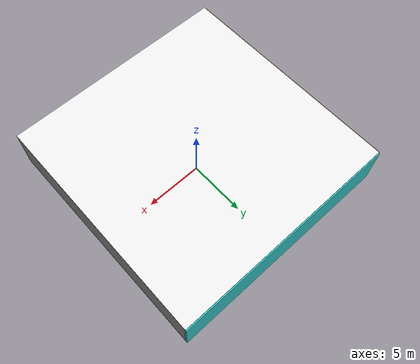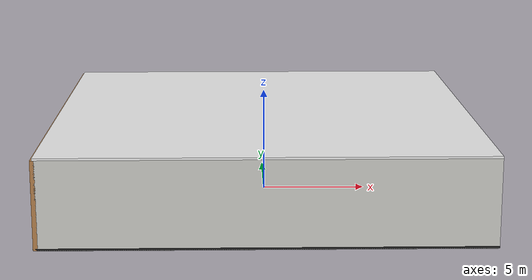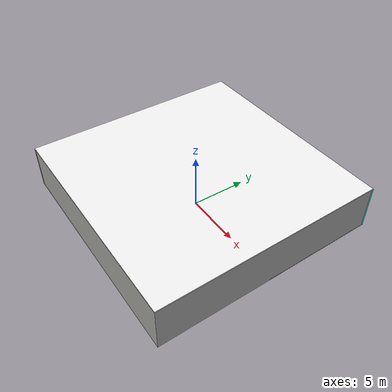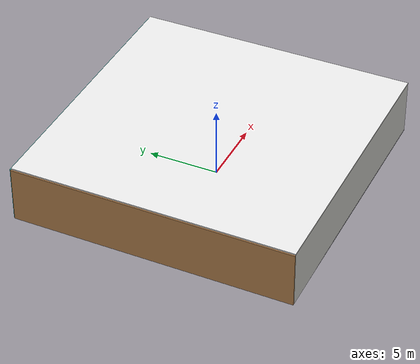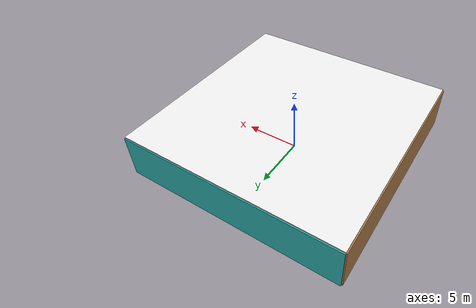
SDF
<sdf version="1.4">
 <world name="default">
  <physics type="ode">
   <max_step_size>0.001</max_step_size>
   <real_time_factor>1</real_time_factor>
   <real_time_update_rate>1000</real_time_update_rate>
   <gravity>0 0 -9.8</gravity>
  </physics>
  <scene><ambient>0.4 0.4 0.4 1</ambient><background>0.7 0.7 0.7 1</background><shadows>1</shadows></scene>
  <model name="Surrounding">
   <static>1</static>
   <link name="Ceiling">
    <collision name="Ceiling_Collision"><geometry><box><size>20 20 0.1</size></box></geometry></collision>
    <visual name="Ceiling_Visual">
     <geometry><box><size>20 20 0.1</size></box></geometry>
     <material>
      <script><uri>file://media/materials/scripts/gazebo.material</uri><name>Gazebo/WhiteGlow</name></script>
     </material>
    </visual>
    <pose>0 0 4.05 0 0 0</pose>
   </link>
   <link name="Wall_South">
    <collision name="Wall_South_Collision">
     <geometry><box><size>20 0 4</size></box></geometry>
     <pose>0 0 2 0 -0 0</pose>
    </collision>
    <visual name="Wall_South_Visual">
     <pose>0 0 2 0 -0 0</pose>
     <geometry><box><size>20 0 4</size></box></geometry>
     <material>
      <script><uri>file://media/materials/scripts/gazebo.material</uri><name>Gazebo/CeilingTiled</name></script>
     </material>
    </visual>
    <velocity_decay><linear>0</linear><angular>0</angular></velocity_decay>
    <pose>0 -10 0 0 -0 0</pose>
   </link>
   <link name="Wall_East">
    <collision name="Wall_21_Collision">
     <geometry><box><size>20 0 4</size></box></geometry>
     <pose>0 0 2 0 -0 0</pose>
    </collision>
    <visual name="Wall_21_Visual">
     <pose>0 0 2 0 -0 0</pose>
     <geometry><box><size>20 0 4</size></box></geometry>
     <material>
      <script><uri>file://media/materials/scripts/gazebo.material</uri><name>Gazebo/Grey</name></script>
     </material>
    </visual>
    <velocity_decay><linear>0</linear><angular>0</angular></velocity_decay>
    <pose>10 0 0 0 -0 1.5708</pose>
   </link>
   <link name="Wall_North">
    <collision name="Wall_22_Collision">
     <geometry><box><size>20 0.2 4</size></box></geometry>
     <pose>0 0 2 0 -0 0</pose>
    </collision>
    <visual name="Wall_22_Visual">
     <pose>0 0 2 0 -0 0</pose>
     <geometry><box><size>20 0.2 4</size></box></geometry>
     <material>
      <script><uri>file://media/materials/scripts/gazebo.material</uri><name>Gazebo/Turquoise</name></script>
     </material>
    </visual>
    <velocity_decay><linear>0</linear><angular>0</angular></velocity_decay>
    <pose>0 10 0 0 -0 0</pose>
   </link>
   <link name="Wall_West">
    <collision name="Wall_23_Collision">
     <geometry><box><size>20 0.2 4</size></box></geometry>
     <pose>0 0 2 0 -0 0</pose>
    </collision>
    <visual name="Wall_23_Visual">
     <pose>0 0 2 0 -0 0</pose>
     <geometry><box><size>20 0.2 4</size></box></geometry>
     <material>
      <script><uri>file://media/materials/scripts/gazebo.material</uri><name>Gazebo/WoodFloor</name></script>
     </material>
    </visual>
    <velocity_decay><linear>0</linear><angular>0</angular></velocity_decay>
    <pose>-10 0 0 0 0 -1.5708</pose>
   </link>
   <link name="Ground_link">
    <collision name="collision">
     <pose>0 0 .05 0 -0 0</pose>
     <geometry><box><size>20 20 0.1</size></box></geometry>
    </collision>
    <visual name="visual">
     <pose>0 0 .05 0 -0 0</pose>
     <geometry><box><size>20 20 0.1</size></box></geometry>
     <material>
      <script><uri>file://media/materials/scripts/gazebo.material</uri><name>Gazebo/Black</name></script>
     </material>
    </visual>
   </link>
   <static>1</static>
  </model>
  <spherical_coordinates>
   <surface_model>EARTH_WGS84</surface_model>
   <latitude_deg>0</latitude_deg>
   <longitude_deg>0</longitude_deg>
   <elevation>0</elevation>
   <heading_deg>0</heading_deg>
  </spherical_coordinates>
  <light name="lightball_0" type="diffuse">
   <diffuse>0.8 0.8 0.8 1</diffuse>
   <specular>0.2 0.2 0.2 1</specular>
   <attenuation>
    <range>100</range>
    <constant>0.7</constant>
    <linear>0.01</linear>
    <quadratic>0.001</quadratic>
   </attenuation>
   <direction>-0.5 0.1 -0.9</direction>
   <pose>-1.36994393562 6.25142688945 1.51985971268 0 0 0</pose>
  </light>
  <light name="lightball_1" type="diffuse">
   <diffuse>0.8 0.8 0.8 1</diffuse>
   <specular>0.2 0.2 0.2 1</specular>
   <attenuation>
    <range>100</range>
    <constant>0.7</constant>
    <linear>0.01</linear>
    <quadratic>0.001</quadratic>
   </attenuation>
   <direction>-0.5 0.1 -0.9</direction>
   <pose>2.19671066075 -3.18928045379 3.89428007903 0 0 0</pose>
  </light>
  <light name="lightball_2" type="diffuse">
   <diffuse>0.8 0.8 0.8 1</diffuse>
   <specular>0.2 0.2 0.2 1</specular>
   <attenuation>
    <range>100</range>
    <constant>0.7</constant>
    <linear>0.01</linear>
    <quadratic>0.001</quadratic>
   </attenuation>
   <direction>-0.5 0.1 -0.9</direction>
   <pose>6.23569495027 3.47227633683 1.33826484665 0 0 0</pose>
  </light>
  <light name="lightball_3" type="diffuse">
   <diffuse>0.8 0.8 0.8 1</diffuse>
   <specular>0.2 0.2 0.2 1</specular>
   <attenuation>
    <range>100</range>
    <constant>0.7</constant>
    <linear>0.01</linear>
    <quadratic>0.001</quadratic>
   </attenuation>
   <direction>-0.5 0.1 -0.9</direction>
   <pose>2.27692455706 4.36263022337 1.53740779562 0 0 0</pose>
  </light>
  <light name="lightball_4" type="diffuse">
   <diffuse>0.8 0.8 0.8 1</diffuse>
   <specular>0.2 0.2 0.2 1</specular>
   <attenuation>
    <range>100</range>
    <constant>0.7</constant>
    <linear>0.01</linear>
    <quadratic>0.001</quadratic>
   </attenuation>
   <direction>-0.5 0.1 -0.9</direction>
   <pose>-7.34663514499 -3.90904656187 1.18758919555 0 0 0</pose>
  </light>
  <light name="lightball_5" type="diffuse">
   <diffuse>0.8 0.8 0.8 1</diffuse>
   <specular>0.2 0.2 0.2 1</specular>
   <attenuation>
    <range>100</range>
    <constant>0.7</constant>
    <linear>0.01</linear>
    <quadratic>0.001</quadratic>
   </attenuation>
   <direction>-0.5 0.1 -0.9</direction>
   <pose>1.7006397263 -3.80612314873 1.41227655458 0 0 0</pose>
  </light>
  <light name="lightball_6" type="diffuse">
   <diffuse>0.8 0.8 0.8 1</diffuse>
   <specular>0.2 0.2 0.2 1</specular>
   <attenuation>
    <range>100</range>
    <constant>0.7</constant>
    <linear>0.01</linear>
    <quadratic>0.001</quadratic>
   </attenuation>
   <direction>-0.5 0.1 -0.9</direction>
   <pose>-4.03613720018 -5.5665852748 1.06018083259 0 0 0</pose>
  </light>
  <light name="lightball_7" type="diffuse">
   <diffuse>0.8 0.8 0.8 1</diffuse>
   <specular>0.2 0.2 0.2 1</specular>
   <attenuation>
    <range>100</range>
    <constant>0.7</constant>
    <linear>0.01</linear>
    <quadratic>0.001</quadratic>
   </attenuation>
   <direction>-0.5 0.1 -0.9</direction>
   <pose>-4.63396915725 -5.53272512297 2.02821534457 0 0 0</pose>
  </light>
  <light name="lightball_8" type="diffuse">
   <diffuse>0.8 0.8 0.8 1</diffuse>
   <specular>0.2 0.2 0.2 1</specular>
   <attenuation>
    <range>100</range>
    <constant>0.7</constant>
    <linear>0.01</linear>
    <quadratic>0.001</quadratic>
   </attenuation>
   <direction>-0.5 0.1 -0.9</direction>
   <pose>9.62642215368 -5.04933866267 3.17906284664 0 0 0</pose>
  </light>
  <light name="lightball_9" type="diffuse">
   <diffuse>0.8 0.8 0.8 1</diffuse>
   <specular>0.2 0.2 0.2 1</specular>
   <attenuation>
    <range>100</range>
    <constant>0.7</constant>
    <linear>0.01</linear>
    <quadratic>0.001</quadratic>
   </attenuation>
   <direction>-0.5 0.1 -0.9</direction>
   <pose>-6.80825483243 7.37884417667 1.8867773371 0 0 0</pose>
  </light>
  <light name="lightball_10" type="diffuse">
   <diffuse>0.8 0.8 0.8 1</diffuse>
   <specular>0.2 0.2 0.2 1</specular>
   <attenuation>
    <range>100</range>
    <constant>0.7</constant>
    <linear>0.01</linear>
    <quadratic>0.001</quadratic>
   </attenuation>
   <direction>-0.5 0.1 -0.9</direction>
   <pose>-0.979076310479 -3.94784946282 1.28480733705 0 0 0</pose>
  </light>
  <light name="lightball_11" type="diffuse">
   <diffuse>0.8 0.8 0.8 1</diffuse>
   <specular>0.2 0.2 0.2 1</specular>
   <attenuation>
    <range>100</range>
    <constant>0.7</constant>
    <linear>0.01</linear>
    <quadratic>0.001</quadratic>
   </attenuation>
   <direction>-0.5 0.1 -0.9</direction>
   <pose>1.29298837551 6.51513817155 2.72889928979 0 0 0</pose>
  </light>
  <light name="lightball_12" type="diffuse">
   <diffuse>0.8 0.8 0.8 1</diffuse>
   <specular>0.2 0.2 0.2 1</specular>
   <attenuation>
    <range>100</range>
    <constant>0.7</constant>
    <linear>0.01</linear>
    <quadratic>0.001</quadratic>
   </attenuation>
   <direction>-0.5 0.1 -0.9</direction>
   <pose>3.37139045057 5.17902820815 3.09395614287 0 0 0</pose>
  </light>
  <light name="lightball_13" type="diffuse">
   <diffuse>0.8 0.8 0.8 1</diffuse>
   <specular>0.2 0.2 0.2 1</specular>
   <attenuation>
    <range>100</range>
    <constant>0.7</constant>
    <linear>0.01</linear>
    <quadratic>0.001</quadratic>
   </attenuation>
   <direction>-0.5 0.1 -0.9</direction>
   <pose>-4.34920617359 5.48402947505 1.21050637566 0 0 0</pose>
  </light>
  <include><uri>model://table</uri><pose>-4.54637783399 1.96518174861 0 0 0 0.0178032332718</pose></include>
  <include>
   <uri>model://robocup_3Dsim_goal</uri>
   <pose>-1.92272780139 7.84066564888 0 0 0 2.18646732952</pose>
  </include>
  <include><uri>model://table</uri><pose>1.65132744939 -1.09329823363 0 0 0 1.32691324154</pose></include>
 </world>
</sdf>

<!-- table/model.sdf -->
<sdf version="1.5">
  <model name="table">
    <static>true</static>
    <link name="link">
      <collision name="surface">
        <pose>0 0 1.0 0 0 0</pose>
        <geometry>
          <box>
            <size>1.5 0.8 0.03</size>
          </box>
        </geometry>
        <surface>
          <friction>
            <ode>
              <mu>0.6</mu>
              <mu2>0.6</mu2>
            </ode>
          </friction>
        </surface>
      </collision>
      <visual name="visual1">
        <pose>0 0 1.0 0 0 0</pose>
        <geometry>
          <box>
            <size>1.5 0.8 0.03</size>
          </box>
        </geometry>
        <material>
          <script>
            <uri>model://media/materials/scripts/gazebo.material</uri>
            <name>Gazebo/Wood</name>
          </script>
        </material>
      </visual>
      <collision name="front_left_leg">
        <pose>0.68 0.38 0.5 0 0 0</pose>
        <geometry>
          <cylinder>
            <radius>0.02</radius>
            <length>1.0</length>
          </cylinder>
        </geometry>
      </collision>
      <visual name="front_left_leg">
        <pose>0.68 0.38 0.5 0 0 0</pose>
        <geometry>
          <cylinder>
            <radius>0.02</radius>
            <length>1.0</length>
          </cylinder>
        </geometry>
        <material>
          <script>
            <uri>model://media/materials/scripts/gazebo.material</uri>
            <name>Gazebo/Grey</name>
          </script>
        </material>
      </visual>
      <collision name="front_right_leg">
        <pose>0.68 -0.38 0.5 0 0 0</pose>
        <geometry>
          <cylinder>
            <radius>0.02</radius>
            <length>1.0</length>
          </cylinder>
        </geometry>
      </collision>
      <visual name="front_right_leg">
        <pose>0.68 -0.38 0.5 0 0 0</pose>
        <geometry>
          <cylinder>
            <radius>0.02</radius>
            <length>1.0</length>
          </cylinder>
        </geometry>
        <material>
          <script>
            <uri>model://media/materials/scripts/gazebo.material</uri>
            <name>Gazebo/Grey</name>
          </script>
        </material>
      </visual>
      <collision name="back_right_leg">
        <pose>-0.68 -0.38 0.5 0 0 0</pose>
        <geometry>
          <cylinder>
            <radius>0.02</radius>
            <length>1.0</length>
          </cylinder>
        </geometry>
      </collision>
      <visual name="back_right_leg">
        <pose>-0.68 -0.38 0.5 0 0 0</pose>
        <geometry>
          <cylinder>
            <radius>0.02</radius>
            <length>1.0</length>
          </cylinder>
        </geometry>
        <material>
          <script>
            <uri>model://media/materials/scripts/gazebo.material</uri>
            <name>Gazebo/Grey</name>
          </script>
        </material>
      </visual>
      <collision name="back_left_leg">
        <pose>-0.68 0.38 0.5 0 0 0</pose>
        <geometry>
          <cylinder>
            <radius>0.02</radius>
            <length>1.0</length>
          </cylinder>
        </geometry>
      </collision>
      <visual name="back_left_leg">
        <pose>-0.68 0.38 0.5 0 0 0</pose>
        <geometry>
          <cylinder>
            <radius>0.02</radius>
            <length>1.0</length>
          </cylinder>
        </geometry>
        <material>
          <script>
            <uri>model://media/materials/scripts/gazebo.material</uri>
            <name>Gazebo/Grey</name>
          </script>
        </material>
      </visual>
    </link>
  </model>
</sdf>

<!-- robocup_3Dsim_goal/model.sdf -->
<sdf version="1.5">
  <model name="robocup_3d_goal">
    <static>true</static>
    <link name="left_post">
      <pose>0 1.05 0.45 0 0 0</pose>
      <collision name="collision">
        <geometry>
          <cylinder>
            <radius>0.05</radius>
            <length>0.9</length>
          </cylinder>
        </geometry>
      </collision>
      <visual name="visual">
        <geometry>
          <cylinder>
            <radius>0.05</radius>
            <length>0.9</length>
          </cylinder>
        </geometry>
        <material>
          <script>
            <uri>file://media/materials/scripts/gazebo.material</uri>
            <name>Gazebo/ZincYellow</name>
          </script>
        </material>
      </visual>
    </link>
    <link name="left_support_horiz_lower">
      <pose>0.30 1.05 0.01 0 0 0</pose>
      <collision name="collision">
        <geometry>
          <box>
            <size>0.50 0.02 0.02</size>
          </box>
        </geometry>
      </collision>
      <visual name="visual">
        <geometry>
          <box>
            <size>0.50 0.02 0.02</size>
          </box>
        </geometry>
        <material>
          <script>
            <uri>file://media/materials/scripts/gazebo.material</uri>
            <name>Gazebo/White</name>
          </script>
        </material>
      </visual>
    </link>
    <link name="left_support_horiz_upper">
      <pose>0.30 1.05 0.79 0 0 0</pose>
      <collision name="collision">
        <geometry>
          <box>
            <size>0.50 0.02 0.02</size>
          </box>
        </geometry>
      </collision>
      <visual name="visual">
        <geometry>
          <box>
            <size>0.50 0.02 0.02</size>
          </box>
        </geometry>
        <material>
          <script>
            <uri>file://media/materials/scripts/gazebo.material</uri>
            <name>Gazebo/White</name>
          </script>
        </material>
      </visual>
    </link>
    <link name="left_support_vertical">
      <pose>0.56 1.05 0.4 0 1.5708 0</pose>
      <collision name="collision">
        <geometry>
          <box>
            <size>0.80 0.02 0.02</size>
          </box>
        </geometry>
      </collision>
      <visual name="visual">
        <geometry>
          <box>
            <size>0.80 0.02 0.02</size>
          </box>
        </geometry>
        <material>
          <script>
            <uri>file://media/materials/scripts/gazebo.material</uri>
            <name>Gazebo/White</name>
          </script>
        </material>
      </visual>
    </link>
    <link name="right_support_horiz_lower">
      <pose>0.30 -1.05 0.01 0 0 0</pose>
      <collision name="collision">
        <geometry>
          <box>
            <size>0.50 0.02 0.02</size>
          </box>
        </geometry>
      </collision>
      <visual name="visual">
        <geometry>
          <box>
            <size>0.50 0.02 0.02</size>
          </box>
        </geometry>
        <material>
          <script>
            <uri>file://media/materials/scripts/gazebo.material</uri>
            <name>Gazebo/White</name>
          </script>
        </material>
      </visual>
    </link>
    <link name="right_support_horiz_upper">
      <pose>0.30 -1.05 0.79 0 0 0</pose>
      <collision name="collision">
        <geometry>
          <box>
            <size>0.50 0.02 0.02</size>
          </box>
        </geometry>
      </collision>
      <visual name="visual">
        <geometry>
          <box>
            <size>0.50 0.02 0.02</size>
          </box>
        </geometry>
        <material>
          <script>
            <uri>file://media/materials/scripts/gazebo.material</uri>
            <name>Gazebo/White</name>
          </script>
        </material>
      </visual>
    </link>
    <link name="right_support_vertical">
      <pose>0.56 -1.05 0.4 0 1.5708 0</pose>
      <collision name="collision">
        <geometry>
          <box>
            <size>0.80 0.02 0.02</size>
          </box>
        </geometry>
      </collision>
      <visual name="visual">
        <geometry>
          <box>
            <size>0.80 0.02 0.02</size>
          </box>
        </geometry>
        <material>
          <script>
            <uri>file://media/materials/scripts/gazebo.material</uri>
            <name>Gazebo/White</name>
          </script>
        </material>
      </visual>
    </link>
    <link name="center_support_horiz_lower">
      <pose>0.56 0 0.01 0 1.5708 0</pose>
      <collision name="collision">
        <geometry>
          <box>
            <size>0.02 2.08 0.02</size>
          </box>
        </geometry>
      </collision>
      <visual name="visual">
        <geometry>
          <box>
            <size>0.02 2.08 0.02</size>
          </box>
        </geometry>
        <material>
          <script>
            <uri>file://media/materials/scripts/gazebo.material</uri>
            <name>Gazebo/White</name>
          </script>
        </material>
      </visual>
    </link>
    <link name="center_support_horiz_upper">
      <pose>0.56 0 0.79 0 1.5708 0</pose>
      <collision name="collision">
        <geometry>
          <box>
            <size>0.02 2.08 0.02</size>
          </box>
        </geometry>
      </collision>
      <visual name="visual">
        <geometry>
          <box>
            <size>0.02 2.08 0.02</size>
          </box>
        </geometry>
        <material>
          <script>
            <uri>file://media/materials/scripts/gazebo.material</uri>
            <name>Gazebo/White</name>
          </script>
        </material>
      </visual>
    </link>
    <link name="right_post">
      <pose>0 -1.05 0.45 0 0 0</pose>
      <collision name="collision">
        <geometry>
          <cylinder>
            <radius>0.05</radius>
            <length>0.9</length>
          </cylinder>
        </geometry>
      </collision>
      <visual name="visual">
        <geometry>
          <cylinder>
            <radius>0.05</radius>
            <length>0.9</length>
          </cylinder>
        </geometry>
        <material>
          <script>
            <uri>file://media/materials/scripts/gazebo.material</uri>
            <name>Gazebo/ZincYellow</name>
          </script>
        </material>
      </visual>
    </link>
    <link name="crossbar">
      <pose>0 0 0.85 1.57 1.57 0</pose>
      <collision name="collision">
        <geometry>
          <cylinder>
            <radius>0.05</radius>
            <length>2.0</length>
          </cylinder>
        </geometry>
      </collision>
      <visual name="visual">
        <geometry>
          <cylinder>
            <radius>0.05</radius>
            <length>2.0</length>
          </cylinder>
        </geometry>
        <material>
          <script>
            <uri>file://media/materials/scripts/gazebo.material</uri>
            <name>Gazebo/ZincYellow</name>
          </script>
        </material>
      </visual>
    </link>
    <link name="center_net">
      <pose>0.56 0 0.40 0 0 0</pose>
      <collision name="collision">
        <geometry>
          <box>
            <size>0.01 2.1 0.80</size>
          </box>
        </geometry>
      </collision>
      <visual name="visual">
        <geometry>
          <box>
            <size>0.01 2.1 0.80</size>
          </box>
        </geometry>
        <material>
          <script>
            <uri>model://../model_source/models/robocup09_spl_field/materials/scripts/</uri>
            <uri>model://../model_source/models/robocup09_spl_field/materials/textures/</uri>
            <name>RoboCup/Net</name>
          </script>
        </material>
      </visual>
    </link>
    <link name="left_net">
      <pose>0.30 1.05 0.40 0 0 0</pose>
      <collision name="collision">
        <geometry>
          <box>
            <size>0.50 0.01 0.76</size>
          </box>
        </geometry>
      </collision>
      <visual name="visual">
        <geometry>
          <box>
            <size>0.50 0.01 0.76</size>
          </box>
        </geometry>
        <material>
          <script>
            <uri>model://../model_source/models/robocup09_spl_field/materials/scripts/</uri>
            <uri>model://../model_source/models/robocup09_spl_field/materials/textures/</uri>
            <name>RoboCup/Net</name>
          </script>
        </material>
      </visual>
    </link>
    <link name="right_net">
      <pose>0.30 -1.05 0.40 0 0 0</pose>
      <collision name="collision">
        <geometry>
          <box>
            <size>0.50 0.01 0.76</size>
          </box>
        </geometry>
      </collision>
      <visual name="visual">
        <geometry>
          <box>
            <size>0.50 0.01 0.76</size>
          </box>
        </geometry>
        <material>
          <script>
            <uri>model://../model_source/models/robocup09_spl_field/materials/scripts/</uri>
            <uri>model://../model_source/models/robocup09_spl_field/materials/textures/</uri>
            <name>RoboCup/Net</name>
          </script>
        </material>
      </visual>
    </link>
  </model>
</sdf>
